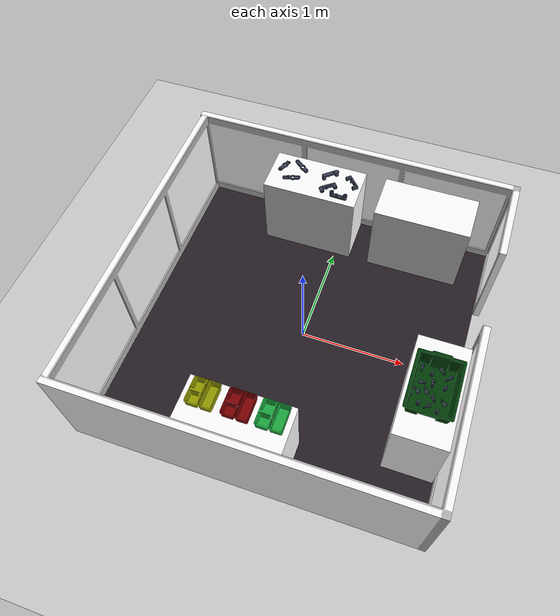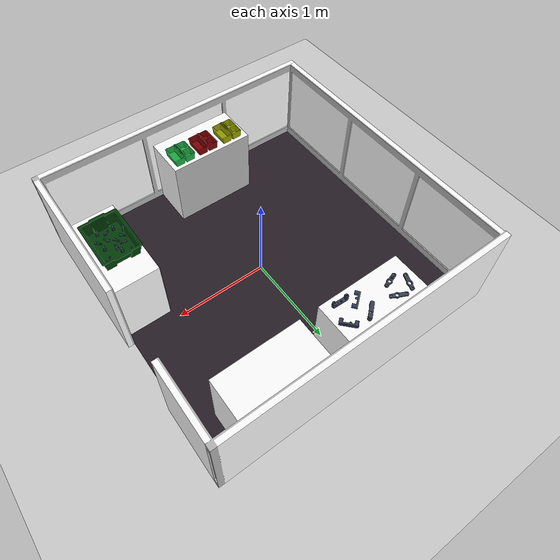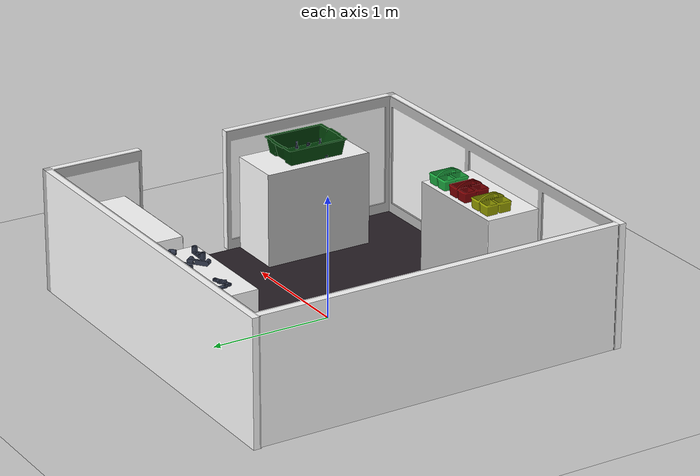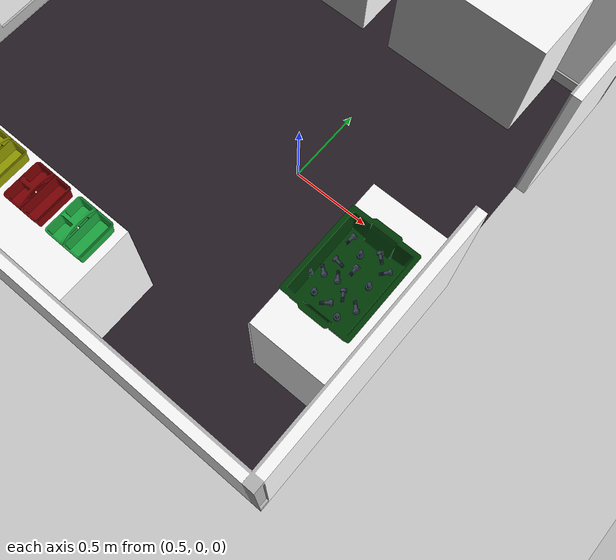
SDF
<?xml version="1.0" ?>
<sdf version="1.4">
  <world name="default">

    <include>
      <uri>model://ground_plane</uri>
      <pose>0 0 -0.005 0 0 0</pose>
    </include>

    <include>
      <uri>model://fetchit_arena</uri>
      <name>fetchit_arena1</name>
      <pose>0 0 0 0 0 0</pose>
    </include>

    <include>
      <uri>model://fetchit_table_em</uri>
      <name>fetchit_table_em1</name>
      <pose>1.28714 -0.565 0.0 0 0 -1.57</pose>
    </include>

    <include>
      <uri>model://fetchit_table_sick</uri>
      <name>fetchit_table_sick1</name>
      <pose>-0.305 1.28179 0.0 0 0 0</pose>
    </include>

    <include>
      <uri>model://fetchit_table_fetch</uri>
      <name>fetchit_table_fetch1</name>
      <pose>-0.135 -1.28849 0.0 0 0 3.1416</pose>
    </include>

    <include>
      <uri>model://fetchit_table_theconstruct</uri>
      <name>fetchit_table_theconstruct1</name>
      <pose>0.815 1.28179 0.0 0 0 0</pose>
    </include>

    <include>
      <uri>model://caddy_green</uri>
      <name>caddy_green1</name>
      <pose>0.168355 -1.20441 0.826729 0 0 0</pose>
    </include>

    <include>
      <uri>model://caddy_red</uri>
      <name>caddy_red1</name>
      <pose>-0.113059 -1.20441 0.826729 0 0 0</pose>
    </include>

    <include>
      <uri>model://caddy_yellow</uri>
      <name>caddy_yellow1</name>
      <pose>-0.414898 -1.20441 0.826729 0 0 0</pose>
    </include>

    <include>
      <uri>model://screw_bin</uri>
      <name>screw_bin</name>
      <pose>1.273518 -0.580070 0.791994 0 0 -1.570000</pose>
    </include>

    <include>
      <uri>model://gearbox_bolt_grey</uri>
      <name>gearbox_bolt_grey1</name>
      <pose>1.19481 -0.727808 0.802789 0 0 0</pose>
    </include>

    <include>
      <uri>model://gearbox_bolt_grey</uri>
      <name>gearbox_bolt_grey2</name>
      <pose>1.11789 -0.669909 0.802789 0 0 0</pose>
    </include>

    <include>
      <uri>model://gearbox_bolt_grey</uri>
      <name>gearbox_bolt_grey3</name>
      <pose>1.350704 -0.754017 0.802789 0 0 -1.308124</pose>
    </include>

    <include>
      <uri>model://gearbox_bolt_grey</uri>
      <name>gearbox_bolt_grey4</name>
      <pose>1.243036 -0.450530 0.802789 0 0 0</pose>
    </include>

    <include>
      <uri>model://gearbox_bolt_grey</uri>
      <name>gearbox_bolt_grey5</name>
      <pose>1.370686 -0.549596 0.812789 0 0 0</pose>
    </include>

    <include>
      <uri>model://gearbox_bolt_grey</uri>
      <name>gearbox_bolt_grey6</name>
      <pose>1.268349 -0.497908 0.812789 -1.705541 -0.194300 -3.129138</pose>
    </include>

    <include>
      <uri>model://gearbox_bolt_grey</uri>
      <name>gearbox_bolt_grey7</name>
      <pose>1.179747 -0.635944 0.812789 -2.169015 -1.334226 1.451970</pose>
    </include>

    <include>
      <uri>model://gearbox_bolt_grey</uri>
      <name>gearbox_bolt_grey8</name>
      <pose>1.157317 -0.535487 0.812789 1.729658 0.582543 1.537639</pose>
    </include>

    <include>
      <uri>model://gearbox_bolt_grey</uri>
      <name>gearbox_bolt_grey9</name>
      <pose>1.299535 -0.376243 0.812789 1.705579 -0.194322 0.840076</pose>
    </include>

    <include>
      <uri>model://gearbox_bolt_grey</uri>
      <name>gearbox_bolt_grey10</name>
      <pose>1.161153 -0.385996 0.812789 -1.705525 -0.194450 3.048550</pose>
    </include>

    <include>
      <uri>model://gearbox_bolt_grey</uri>
      <name>gearbox_bolt_grey11</name>
      <pose>1.288459 -0.626789 0.812789 2.170262 -1.334160 -0.036304</pose>
    </include>

    <include>
      <uri>model://gearbox_bolt_grey</uri>
      <name>gearbox_bolt_grey12</name>
      <pose>1.405303 -0.419482 0.812789 1.729377 -0.582539 -0.796464</pose>
    </include>

    <include>
      <uri>model://gearbox_bolt_grey</uri>
      <name>gearbox_bolt_grey13</name>
      <pose>1.290790 -0.711409 0.812789 2.169131 -1.334256 -1.463483</pose>
    </include>

    <include>
      <uri>model://gearbox_bolt_grey</uri>
      <name>gearbox_bolt_grey14</name>
      <pose>1.405032 -0.680078 0.812789 -2.169053 1.334241 0.204366</pose>
    </include>

    <include>
      <uri>model://gearbox_bolt_grey</uri>
      <name>gearbox_bolt_grey15</name>
      <pose>1.246703 -0.623204 0.812789 -2.168823 -1.334070 1.183061</pose>
    </include>

    <include>
      <uri>model://gearbox_bottom_grey</uri>
      <name>gearbox_bottom_grey1</name>
      <pose>-0.024991 1.128376 0.784992 0 0 3.105351</pose>
    </include>
    <include>
      <uri>model://gearbox_bottom_grey</uri>
      <name>gearbox_bottom_grey2</name>
      <pose>0.070919 1.347065 0.804964 -1.570796 0 2.317278</pose>
    </include>
    <include>
      <uri>model://gearbox_bottom_grey</uri>
      <name>gearbox_bottom_grey3</name>
      <pose>-0.173732 1.354286 0.837371 3.141545 0 -2.437420</pose>
    </include>
    <include>
      <uri>model://gearbox_bottom_grey</uri>
      <name>gearbox_bottom_grey4</name>
      <pose>-0.165214 1.215589 0.804963 -1.570796 0 -2.472675</pose>
    </include>

    <include>
      <uri>model://gearbox_top_grey</uri>
      <name>gearbox_top_grey1</name>
      <pose>-0.646720 1.331895 0.801285 0.000001 0.173592 1.290266</pose>
    </include>
    <include>
      <uri>model://gearbox_top_grey</uri>
      <name>gearbox_top_grey2</name>
      <pose>-0.534968 1.220576 0.796855 -3.141591 -0.000002 0.323833</pose>
    </include>
    <include>
      <uri>model://gearbox_top_grey</uri>
      <name>gearbox_top_grey3</name>
      <pose>-0.480600 1.380870 0.801318 0.034228 0.171042 -0.554048</pose>
    </include>

    <light name='user_point_light_0' type='point'>
      <pose frame=''>4.0 4.0 3.5 0 0 0</pose>
      <diffuse>0.7 0.7 0.7 1</diffuse>
      <specular>0.1 0.1 0.1 1</specular>
      <attenuation>
        <range>10</range>
        <constant>1.5</constant>
        <linear>0.01</linear>
        <quadratic>0.001</quadratic>
      </attenuation>
      <cast_shadows>0</cast_shadows>
      <direction>0 0 -1</direction>
    </light>

    <light name='user_point_light_1' type='point'>
      <pose frame=''>-4.0 4.0 3.5 0 0 0</pose>
      <diffuse>0.7 0.7 0.7 1</diffuse>
      <specular>0.1 0.1 0.1 1</specular>
      <attenuation>
        <range>10</range>
        <constant>1.5</constant>
        <linear>0.01</linear>
        <quadratic>0.001</quadratic>
      </attenuation>
      <cast_shadows>0</cast_shadows>
      <direction>0 0 -1</direction>
    </light>

    <light name='user_point_light_2' type='point'>
      <pose frame=''>-4.0 -4.0 3.5 0 0 0</pose>
      <diffuse>0.7 0.7 0.7 1</diffuse>
      <specular>0.1 0.1 0.1 1</specular>
      <attenuation>
        <range>10</range>
        <constant>1.5</constant>
        <linear>0.01</linear>
        <quadratic>0.001</quadratic>
      </attenuation>
      <cast_shadows>0</cast_shadows>
      <direction>0 0 -1</direction>
    </light>

    <light name='user_point_light_3' type='point'>
      <pose frame=''>4.0 -4.0 3.5 0 0 0</pose>
      <diffuse>0.7 0.7 0.7 1</diffuse>
      <specular>0.1 0.1 0.1 1</specular>
      <attenuation>
        <range>10</range>
        <constant>1.5</constant>
        <linear>0.01</linear>
        <quadratic>0.001</quadratic>
      </attenuation>
      <cast_shadows>0</cast_shadows>
      <direction>0 0 -1</direction>
    </light>

  </world>
</sdf>

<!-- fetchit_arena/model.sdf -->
<sdf version='1.4'>
  <model name="fetchit_simple_env">
      <static>1</static>
      <link name='link'>
        <visual name='visual'>
          <geometry>
            <mesh>
              <uri>model://fetchit_arena/meshes/fetchit_arena1.dae</uri>
              <scale>1 1 1</scale>
            </mesh>
          </geometry>
        </visual>
        <collision name='collision'>
          <geometry>
            <mesh>
              <uri>model://fetchit_arena/meshes/fetchit_arena1.dae</uri>
              <scale>1 1 1</scale>
            </mesh>
          </geometry>
          <surface>
            <friction>
              <ode>
                <mu>30.0</mu>
                <mu2>30.0</mu2>
              </ode>
            </friction>
            <contact>
              <ode>
                <soft_cfm>0</soft_cfm>
    	          <soft_erp>0.2</soft_erp>
    	          <kp>1e+13</kp>
    	          <kd>1</kd>
    	          <max_vel>0.01</max_vel>
    	          <min_depth>0</min_depth>
              </ode>
            </contact>
          </surface>
        </collision>
        <velocity_decay>
          <linear>0.000000</linear>
          <angular>0.000000</angular>
        </velocity_decay>
        <self_collide>0</self_collide>
        <kinematic>0</kinematic>
        <gravity>1</gravity>
      </link>
  </model>
</sdf>

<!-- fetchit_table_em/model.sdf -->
<sdf version='1.4'>
  <model name="fetchit_table_em">
      <static>1</static>
      <link name='link'>
        <inertial>
          <mass>0.0592855</mass>
          <inertia>
            <ixx>2.31818050784e-05</ixx>
            <ixy>0.000000</ixy>
            <ixz>0.000000</ixz>
            <iyy>2.31851837098e-05</iyy>
            <iyz>0.000000</iyz>
            <izz>8.88944636856e-06</izz>
          </inertia>
        </inertial>
        <collision name='collision'>
          <geometry>
            <mesh>
              <uri>model://fetchit_table_em/meshes/simple_table.stl</uri>
              <scale>1 1 1</scale>
            </mesh>
          </geometry>
          <surface>
            <friction>
              <ode>
                <mu>30.0</mu>
                <mu2>30.0</mu2>
              </ode>
            </friction>
          </surface>
        </collision>
        <visual name='visual'>
          <geometry>
            <mesh>
              <uri>model://fetchit_table_em/meshes/table_EM.dae</uri>
              <scale>1 1 1</scale>
            </mesh>
          </geometry>
        </visual>
        <velocity_decay>
          <linear>0.000000</linear>
          <angular>0.000000</angular>
        </velocity_decay>
        <self_collide>0</self_collide>
        <kinematic>0</kinematic>
        <gravity>1</gravity>
      </link>
  </model>
</sdf>

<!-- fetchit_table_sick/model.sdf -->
<sdf version='1.4'>
  <model name="fetchit_table_sick">
      <static>1</static>
      <link name='link'>
        <inertial>
          <mass>0.0592855</mass>
          <inertia>
            <ixx>2.31818050784e-05</ixx>
            <ixy>0.000000</ixy>
            <ixz>0.000000</ixz>
            <iyy>2.31851837098e-05</iyy>
            <iyz>0.000000</iyz>
            <izz>8.88944636856e-06</izz>
          </inertia>
        </inertial>
        <collision name='collision'>
          <geometry>
            <mesh>
              <uri>model://fetchit_table_sick/meshes/simple_table.stl</uri>
              <scale>1 1 1</scale>
            </mesh>
          </geometry>
          <surface>
            <friction>
              <ode>
                <mu>30.0</mu>
                <mu2>30.0</mu2>
              </ode>
            </friction>
          </surface>
        </collision>
        <visual name='visual'>
          <geometry>
            <mesh>
              <uri>model://fetchit_table_sick/meshes/table_sick.dae</uri>
              <scale>1 1 1</scale>
            </mesh>
          </geometry>
        </visual>
        <velocity_decay>
          <linear>0.000000</linear>
          <angular>0.000000</angular>
        </velocity_decay>
        <self_collide>0</self_collide>
        <kinematic>0</kinematic>
        <gravity>1</gravity>
      </link>
  </model>
</sdf>

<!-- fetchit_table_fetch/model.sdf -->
<sdf version='1.4'>
  <model name="fetchit_table_fetch">
      <static>1</static>
      <link name='link'>
        <inertial>
          <mass>0.0592855</mass>
          <inertia>
            <ixx>2.31818050784e-05</ixx>
            <ixy>0.000000</ixy>
            <ixz>0.000000</ixz>
            <iyy>2.31851837098e-05</iyy>
            <iyz>0.000000</iyz>
            <izz>8.88944636856e-06</izz>
          </inertia>
        </inertial>
        <collision name='collision'>
          <geometry>
            <mesh>
              <uri>model://fetchit_table_fetch/meshes/simple_table.stl</uri>
              <scale>1 1 1</scale>
            </mesh>
          </geometry>
          <surface>
            <friction>
              <ode>
                <mu>30.0</mu>
                <mu2>30.0</mu2>
              </ode>
            </friction>
          </surface>
        </collision>
        <visual name='visual'>
          <geometry>
            <mesh>
              <uri>model://fetchit_table_fetch/meshes/table_fetch.dae</uri>
              <scale>1 1 1</scale>
            </mesh>
          </geometry>
        </visual>
        <velocity_decay>
          <linear>0.000000</linear>
          <angular>0.000000</angular>
        </velocity_decay>
        <self_collide>0</self_collide>
        <kinematic>0</kinematic>
        <gravity>1</gravity>
      </link>
  </model>
</sdf>

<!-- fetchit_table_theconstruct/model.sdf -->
<sdf version='1.4'>
  <model name="fetchit_table_theconstruct">
      <static>1</static>
      <link name='link'>
        <inertial>
          <mass>0.0592855</mass>
          <inertia>
            <ixx>2.31818050784e-05</ixx>
            <ixy>0.000000</ixy>
            <ixz>0.000000</ixz>
            <iyy>2.31851837098e-05</iyy>
            <iyz>0.000000</iyz>
            <izz>8.88944636856e-06</izz>
          </inertia>
        </inertial>
        <collision name='collision'>
          <geometry>
            <mesh>
              <uri>model://fetchit_table_theconstruct/meshes/simple_table.stl</uri>
              <scale>1 1 1</scale>
            </mesh>
          </geometry>
          <surface>
            <friction>
              <ode>
                <mu>30.0</mu>
                <mu2>30.0</mu2>
              </ode>
            </friction>
          </surface>
        </collision>
        <visual name='visual'>
          <geometry>
            <mesh>
              <uri>model://fetchit_table_theconstruct/meshes/table_theconstruct.dae</uri>
              <scale>1 1 1</scale>
            </mesh>
          </geometry>
        </visual>
        <velocity_decay>
          <linear>0.000000</linear>
          <angular>0.000000</angular>
        </velocity_decay>
        <self_collide>0</self_collide>
        <kinematic>0</kinematic>
        <gravity>1</gravity>
      </link>
  </model>
</sdf>

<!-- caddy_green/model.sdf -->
<sdf version='1.4'>
  <model name="caddy_green">
      <static>1</static>
      <link name='link'>
        <inertial>
          <mass>0.0680389</mass>
          <inertia>
            <ixx>0.00040636575898</ixx>
            <ixy>0.000000</ixy>
            <ixz>0.000000</ixz>
            <iyy>0.00040636575898</iyy>
            <iyz>0.000000</iyz>
            <izz>0.000625974918075</izz>
          </inertia>
        </inertial>
        <collision name='collision'>
          <geometry>
            <mesh>
              <uri>model://caddy_green/meshes/Romanoff_Small_Utility_Caddy_cof.stl</uri>
              <scale>1 1 1</scale>
            </mesh>
          </geometry>
          <surface>
            <friction>
              <ode>
                <mu>1.0</mu>
                <mu2>1.0</mu2>
              </ode>
            </friction>
          </surface>
        </collision>

        <visual name='visual'>
          <geometry>
            <mesh>
              <uri>model://caddy_green/meshes/Romanoff_Small_Utility_Caddy_cof_green.dae</uri>
              <scale>1 1 1</scale>
            </mesh>
          </geometry>
        </visual>
        <velocity_decay>
          <linear>0.000000</linear>
          <angular>0.000000</angular>
        </velocity_decay>
        <self_collide>0</self_collide>
        <kinematic>0</kinematic>
        <gravity>1</gravity>
      </link>
  </model>
</sdf>

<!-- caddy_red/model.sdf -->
<sdf version='1.4'>
  <model name="caddy_red">
      <static>1</static>
      <link name='link'>
        <inertial>
          <mass>0.0680389</mass>
          <inertia>
            <ixx>0.00040636575898</ixx>
            <ixy>0.000000</ixy>
            <ixz>0.000000</ixz>
            <iyy>0.00040636575898</iyy>
            <iyz>0.000000</iyz>
            <izz>0.000625974918075</izz>
          </inertia>
        </inertial>
        <collision name='collision'>
          <geometry>
            <mesh>
              <uri>model://caddy_red/meshes/Romanoff_Small_Utility_Caddy_cof.stl</uri>
              <scale>1 1 1</scale>
            </mesh>
          </geometry>
          <surface>
            <friction>
              <ode>
                <mu>1.0</mu>
                <mu2>1.0</mu2>
              </ode>
            </friction>
          </surface>
        </collision>

        <visual name='visual'>
          <geometry>
            <mesh>
              <uri>model://caddy_red/meshes/Romanoff_Small_Utility_Caddy_cof_red.dae</uri>
              <scale>1 1 1</scale>
            </mesh>
          </geometry>
        </visual>
        <velocity_decay>
          <linear>0.000000</linear>
          <angular>0.000000</angular>
        </velocity_decay>
        <self_collide>0</self_collide>
        <kinematic>0</kinematic>
        <gravity>1</gravity>
      </link>
  </model>
</sdf>

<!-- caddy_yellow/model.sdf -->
<sdf version='1.4'>
  <model name="caddy_yellow">
      <static>1</static>
      <link name='link'>
        <inertial>
          <mass>0.0680389</mass>
          <inertia>
            <ixx>0.00040636575898</ixx>
            <ixy>0.000000</ixy>
            <ixz>0.000000</ixz>
            <iyy>0.00040636575898</iyy>
            <iyz>0.000000</iyz>
            <izz>0.000625974918075</izz>
          </inertia>
        </inertial>
        <collision name='collision'>
          <geometry>
            <mesh>
              <uri>model://caddy_yellow/meshes/Romanoff_Small_Utility_Caddy_cof.stl</uri>
              <scale>1 1 1</scale>
            </mesh>
          </geometry>
          <surface>
            <friction>
              <ode>
                <mu>1.0</mu>
                <mu2>1.0</mu2>
              </ode>
            </friction>
          </surface>
        </collision>

        <visual name='visual'>
          <geometry>
            <mesh>
              <uri>model://caddy_yellow/meshes/Romanoff_Small_Utility_Caddy_cof_yellow.dae</uri>
              <scale>1 1 1</scale>
            </mesh>
          </geometry>
        </visual>
        <velocity_decay>
          <linear>0.000000</linear>
          <angular>0.000000</angular>
        </velocity_decay>
        <self_collide>0</self_collide>
        <kinematic>0</kinematic>
        <gravity>1</gravity>
      </link>
  </model>
</sdf>

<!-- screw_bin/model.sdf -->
<sdf version='1.4'>
  <model name="screw_bin">
      <static>0</static>
      <link name='link'>
        <inertial>
          <!-- Weight = 1.7lb -> 0.771107kg-->
          <mass>0.771107</mass>
          <inertia>
            <ixx>0.010364</ixx>
            <ixy>0.000000</ixy>
            <ixz>0.000000</ixz>
            <iyy>0.017619</iyy>
            <iyz>0.000000</iyz>
            <izz>0.025911</izz>
          </inertia>
        </inertial>
        <collision name='collision'>
          <geometry>
            <mesh>
              <uri>model://screw_bin/meshes/screw_bin.stl</uri>
              <scale>1 1 1</scale>
            </mesh>
          </geometry>
          <surface>
            <friction>
              <ode>
                <mu>30.0</mu>
                <mu2>30.0</mu2>
              </ode>
            </friction>
          </surface>
        </collision>
        <visual name='visual'>
          <geometry>
            <mesh>
              <uri>model://screw_bin/meshes/screw_bin.dae</uri>
              <scale>1 1 1</scale>
            </mesh>
          </geometry>
        </visual>
        <velocity_decay>
          <linear>0.000000</linear>
          <angular>0.000000</angular>
        </velocity_decay>
        <self_collide>0</self_collide>
        <kinematic>0</kinematic>
        <gravity>1</gravity>
      </link>
  </model>
</sdf>

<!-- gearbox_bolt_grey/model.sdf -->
<sdf version='1.4'>
  <model name="gearbox_bolt_grey">
      <static>0</static>
      <link name='link'>
        <inertial>
          <pose>0 0 0.030633 0 0 0</pose>
          <mass>0.0592855</mass>
          <inertia>
            <ixx>2.2977502034e-05</ixx>
            <ixy>0.000000</ixy>
            <ixz>0.000000</ixz>
            <iyy>2.29905352792e-05</iyy>
            <iyz>0.000000</iyz>
            <izz>8.87979175473e-06</izz>
          </inertia>
        </inertial>
        <collision name='collision'>
          <geometry>
            <mesh>
              <uri>model://gearbox_bolt_grey/meshes/gear_bolt_simple.stl</uri>
              <scale>1 1 1</scale>
            </mesh>
          </geometry>
          <surface>
            <friction>
              <ode>
                <mu>30.0</mu>
                <mu2>30.0</mu2>
              </ode>
            </friction>
          </surface>
        </collision>
        <visual name='visual'>
          <geometry>
            <mesh>
              <uri>model://gearbox_bolt_grey/meshes/screw_grey.dae</uri>
              <scale>1 1 1</scale>
            </mesh>
          </geometry>
        </visual>
        <velocity_decay>
          <linear>0.000000</linear>
          <angular>0.000000</angular>
        </velocity_decay>
        <self_collide>0</self_collide>
        <kinematic>0</kinematic>
        <gravity>1</gravity>
      </link>
  </model>
</sdf>

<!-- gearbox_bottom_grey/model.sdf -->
<sdf version='1.4'>
  <model name="gearbox_bottom_grey">
      <static>1</static>
      <link name='link'>
        <inertial>
          <pose>0 0 0.0261852 0 0 0</pose>
          <mass>0.3705614</mass>
          <inertia>
            <ixx>0.000131217258397</ixx>
            <ixy>0.000000</ixy>
            <ixz>0.000000</ixz>
            <iyy>0.000981017941434</iyy>
            <iyz>0.000000</iyz>
            <izz>0.000942847952626</izz>
          </inertia>
        </inertial>
        <collision name='collision'>
          <geometry>
            <mesh>
              <uri>model://gearbox_bottom_grey/meshes/gearbox_bottom_simple.stl</uri>
              <scale>1 1 1</scale>
            </mesh>
          </geometry>
          <surface>
            <friction>
              <ode>
                <mu>30.0</mu>
                <mu2>30.0</mu2>
              </ode>
            </friction>
          </surface>
        </collision>
        <visual name='visual'>
          <geometry>
            <mesh>
              <uri>model://gearbox_bottom_grey/meshes/gearBoxBottom_grey.dae</uri>
              <scale>1 1 1</scale>
            </mesh>
          </geometry>
        </visual>
        <velocity_decay>
          <linear>0.000000</linear>
          <angular>0.000000</angular>
        </velocity_decay>
        <self_collide>0</self_collide>
        <kinematic>0</kinematic>
        <gravity>1</gravity>
      </link>
  </model>
</sdf>

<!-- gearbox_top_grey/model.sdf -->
<sdf version='1.4'>
  <model name="gearbox_top_grey">
      <static>0</static>
      <link name='link'>
        <inertial>
          <pose>0 0 0 0 0 0</pose>
          <mass>0.2282587</mass>
          <inertia>
            <ixx>4.84526132205e-05</ixx>
            <ixy>0.000000</ixy>
            <ixz>0.000000</ixz>
            <iyy>0.000571913204992</iyy>
            <iyz>0.000000</iyz>
            <izz>0.000580776512074</izz>
          </inertia>
        </inertial>
        <collision name='collision'>
          <geometry>
            <mesh>
              <uri>model://gearbox_top_grey/meshes/gearBoxTop_v3.stl</uri>
              <scale>1 1 1</scale>
            </mesh>
          </geometry>
          <surface>
            <friction>
              <ode>
                <mu>30.0</mu>
                <mu2>30.0</mu2>
              </ode>
            </friction>
          </surface>
        </collision>
        <visual name='visual'>
          <geometry>
            <mesh>
              <uri>model://gearbox_top_grey/meshes/gearBoxTop_grey.dae</uri>
              <scale>1 1 1</scale>
            </mesh>
          </geometry>
        </visual>
        <velocity_decay>
          <linear>0.000000</linear>
          <angular>0.000000</angular>
        </velocity_decay>
        <self_collide>0</self_collide>
        <kinematic>0</kinematic>
        <gravity>1</gravity>
      </link>
  </model>
</sdf>
